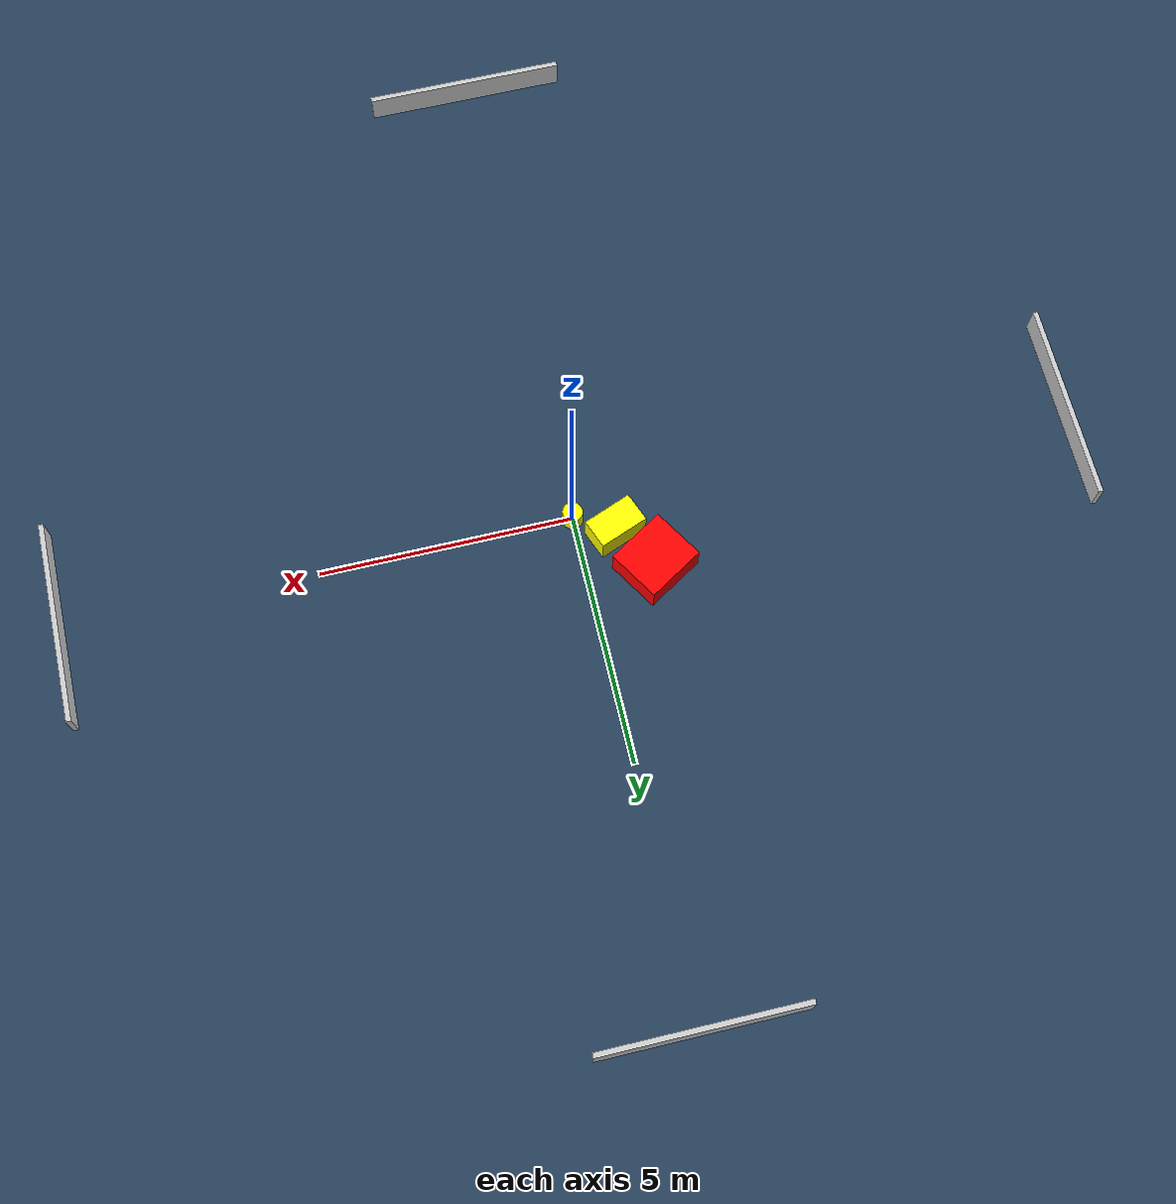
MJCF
<?xml version="1.0" ?>
<mujoco model="generated_environment">
  <option timestep="0.01" integrator="RK4" cone="elliptic"/>
  <default>
    <geom density="1"/>
  </default>
  <asset>
    <texture builtin="gradient" height="3072" name="skybox" rgb1="0.3 0.5 0.7" rgb2="0 0 0" type="skybox" width="512"/>
    <texture builtin="checker" height="300" name="groundplane" rgb1="0.2 0.3 0.4" rgb2="0.1 0.2 0.3" type="2d" width="300"/>
    <material name="groundplane" reflectance="0.2" texrepeat="5 5" texture="groundplane"/>
  </asset>
  <worldbody>
    <light dir="0 0 -1" directional="true" pos="0 0 1.5"/>
    <geom condim="3" friction="0.5 0.005 0.001" material="groundplane" name="floor" pos="0 0 0" size="0 0 0.05" type="plane"/>
    <body name="walls">
      <geom name="wall_1" condim="4" pos="-10.0 0.0 0.3" rgba="0.800000011920929 0.800000011920929 0.800000011920929 1.0" size="0.05 2.0 0.3" type="box"/>
      <geom name="wall_2" condim="4" pos="10.0 0.0 0.3" rgba="0.800000011920929 0.800000011920929 0.800000011920929 1.0" size="0.05 2.0 0.3" type="box"/>
      <geom name="wall_3" condim="4" pos="0.0 -10.0 0.3" rgba="0.800000011920929 0.800000011920929 0.800000011920929 1.0" size="2.0 0.05 0.3" type="box"/>
      <geom name="wall_4" condim="4" pos="0.0 10.0 0.3" rgba="0.800000011920929 0.800000011920929 0.800000011920929 1.0" size="2.0 0.05 0.3" type="box"/>
    </body>
    <body name="robot">
      <joint name="joint_x" type="slide" pos="0 0 0" axis="1 0 0"/>
      <joint name="joint_y" type="slide" pos="0 0 0" axis="0 1 0"/>
      <geom name="robot" type="cylinder" pos="0.0 0.0 0.2" size="0.2 0.2 0.0" mass="5.0" friction="1.0 0.005 0.0001" condim="4" rgba="1.0 1.0 0.0 1.0"/>
    </body>
    <body name="obstacle_1_movable">
      <geom name="obstacle_1_movable" condim="4" pos="-0.7464765081204897 0.4379860112521211 0.3" euler="0 0 21.229747082408565" friction="0.0 0.005 0.001" rgba="1.0 1.0 0.0 1.0" size="0.5037303893046681 0.29975438212461375 0.3" type="box" mass="0.1"/>
      <joint type="free"/>
    </body>
    <body name="obstacle_2_static">
      <geom name="obstacle_2_static" condim="4" pos="-1.326529931315342 1.2901656619093638 0.3" euler="0 0 301.3910733084961" friction="0.0 0.005 0.001" rgba="1.0 0.0 0.0 1.0" size="0.5523271095730913 0.6153942195909557 0.3" type="box"/>
    </body>
  </worldbody>
  <actuator>
    <motor name="actuator_x" joint="joint_x" gear="1" ctrlrange="-1 1"/>
    <motor name="actuator_y" joint="joint_y" gear="1" ctrlrange="-1 1"/>
  </actuator>
</mujoco>
